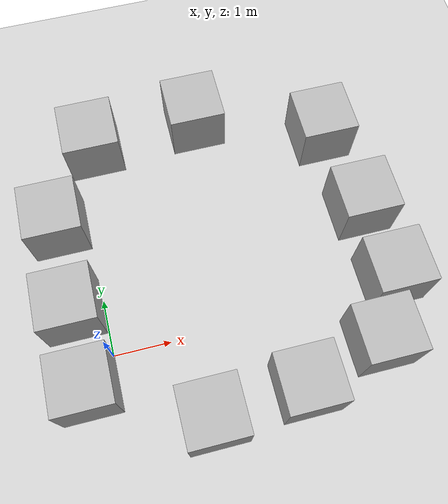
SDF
<sdf version='1.9'>
  <world name='empty'>
    <physics name='1ms' type='ignored'>
      <max_step_size>0.001</max_step_size>
      <real_time_factor>1</real_time_factor>
      <real_time_update_rate>1000</real_time_update_rate>
    </physics>
    <plugin name='gz::sim::systems::Physics' filename='ignition-gazebo-physics-system'/>
    <plugin name='gz::sim::systems::UserCommands' filename='ignition-gazebo-user-commands-system'/>
    <plugin name='gz::sim::systems::SceneBroadcaster' filename='ignition-gazebo-scene-broadcaster-system'/>
    <plugin name='gz::sim::systems::Contact' filename='ignition-gazebo-contact-system'/>
    <gravity>0 0 -9.8</gravity>
    <magnetic_field>6e-06 2.3e-05 -4.2e-05</magnetic_field>
    <atmosphere type='adiabatic'/>
    <scene>
      <ambient>0.4 0.4 0.4 1</ambient>
      <background>0.7 0.7 0.7 1</background>
      <shadows>true</shadows>
    </scene>
    <model name='ground_plane'>
      <static>true</static>
      <link name='link'>
        <collision name='collision'>
          <geometry>
            <plane>
              <normal>0 0 1</normal>
              <size>100 100</size>
            </plane>
          </geometry>
          <surface>
            <friction>
              <ode/>
            </friction>
            <bounce/>
            <contact/>
          </surface>
        </collision>
        <visual name='visual'>
          <geometry>
            <plane>
              <normal>0 0 1</normal>
              <size>100 100</size>
            </plane>
          </geometry>
          <material>
            <ambient>0.8 0.8 0.8 1</ambient>
            <diffuse>0.8 0.8 0.8 1</diffuse>
            <specular>0.8 0.8 0.8 1</specular>
          </material>
        </visual>
        <pose>0 0 0 0 -0 0</pose>
        <inertial>
          <pose>0 0 0 0 -0 0</pose>
          <mass>1</mass>
          <inertia>
            <ixx>1</ixx>
            <ixy>0</ixy>
            <ixz>0</ixz>
            <iyy>1</iyy>
            <iyz>0</iyz>
            <izz>1</izz>
          </inertia>
        </inertial>
        <enable_wind>false</enable_wind>
      </link>
      <pose>0 0 0 0 -0 0</pose>
      <self_collide>false</self_collide>
    </model>
    <model name='box'>
      <pose>-0.523875 2.54638 0.5 0 -0 0</pose>
      <link name='box_link'>
        <inertial>
          <inertia>
            <ixx>0.16666</ixx>
            <ixy>0</ixy>
            <ixz>0</ixz>
            <iyy>0.16666</iyy>
            <iyz>0</iyz>
            <izz>0.16666</izz>
          </inertia>
          <mass>1</mass>
          <pose>0 0 0 0 -0 0</pose>
        </inertial>
        <collision name='box_collision'>
          <geometry>
            <box>
              <size>1 1 1</size>
            </box>
          </geometry>
          <surface>
            <friction>
              <ode/>
            </friction>
            <bounce/>
            <contact/>
          </surface>
        </collision>
        <visual name='box_visual'>
          <geometry>
            <box>
              <size>1 1 1</size>
            </box>
          </geometry>
          <material>
            <ambient>0.3 0.3 0.3 1</ambient>
            <diffuse>0.7 0.7 0.7 1</diffuse>
            <specular>1 1 1 1</specular>
          </material>
        </visual>
        <pose>0 0 0 0 -0 0</pose>
        <enable_wind>false</enable_wind>
      </link>
      <static>false</static>
      <self_collide>false</self_collide>
    </model>
    <model name='box_0'>
      <pose>2.36677 4.13971 0.5 0 -0 0</pose>
      <link name='box_link'>
        <inertial>
          <inertia>
            <ixx>0.16666</ixx>
            <ixy>0</ixy>
            <ixz>0</ixz>
            <iyy>0.16666</iyy>
            <iyz>0</iyz>
            <izz>0.16666</izz>
          </inertia>
          <mass>1</mass>
          <pose>0 0 0 0 -0 0</pose>
        </inertial>
        <collision name='box_collision'>
          <geometry>
            <box>
              <size>1 1 1</size>
            </box>
          </geometry>
          <surface>
            <friction>
              <ode/>
            </friction>
            <bounce/>
            <contact/>
          </surface>
        </collision>
        <visual name='box_visual'>
          <geometry>
            <box>
              <size>1 1 1</size>
            </box>
          </geometry>
          <material>
            <ambient>0.3 0.3 0.3 1</ambient>
            <diffuse>0.7 0.7 0.7 1</diffuse>
            <specular>1 1 1 1</specular>
          </material>
        </visual>
        <pose>0 0 0 0 -0 0</pose>
        <enable_wind>false</enable_wind>
      </link>
      <static>false</static>
      <self_collide>false</self_collide>
    </model>
    <model name='box_1'>
      <pose>4.88511 1.60801 0.5 0 -0 0</pose>
      <link name='box_link'>
        <inertial>
          <inertia>
            <ixx>0.16666</ixx>
            <ixy>0</ixy>
            <ixz>0</ixz>
            <iyy>0.16666</iyy>
            <iyz>0</iyz>
            <izz>0.16666</izz>
          </inertia>
          <mass>1</mass>
          <pose>0 0 0 0 -0 0</pose>
        </inertial>
        <collision name='box_collision'>
          <geometry>
            <box>
              <size>1 1 1</size>
            </box>
          </geometry>
          <surface>
            <friction>
              <ode/>
            </friction>
            <bounce/>
            <contact/>
          </surface>
        </collision>
        <visual name='box_visual'>
          <geometry>
            <box>
              <size>1 1 1</size>
            </box>
          </geometry>
          <material>
            <ambient>0.3 0.3 0.3 1</ambient>
            <diffuse>0.7 0.7 0.7 1</diffuse>
            <specular>1 1 1 1</specular>
          </material>
        </visual>
        <pose>0 0 0 0 -0 0</pose>
        <enable_wind>false</enable_wind>
      </link>
      <static>false</static>
      <self_collide>false</self_collide>
    </model>
    <model name='box_2'>
      <pose>4.64743 3.28891 0.5 0 -0 0</pose>
      <link name='box_link'>
        <inertial>
          <inertia>
            <ixx>0.16666</ixx>
            <ixy>0</ixy>
            <ixz>0</ixz>
            <iyy>0.16666</iyy>
            <iyz>0</iyz>
            <izz>0.16666</izz>
          </inertia>
          <mass>1</mass>
          <pose>0 0 0 0 -0 0</pose>
        </inertial>
        <collision name='box_collision'>
          <geometry>
            <box>
              <size>1 1 1</size>
            </box>
          </geometry>
          <surface>
            <friction>
              <ode/>
            </friction>
            <bounce/>
            <contact/>
          </surface>
        </collision>
        <visual name='box_visual'>
          <geometry>
            <box>
              <size>1 1 1</size>
            </box>
          </geometry>
          <material>
            <ambient>0.3 0.3 0.3 1</ambient>
            <diffuse>0.7 0.7 0.7 1</diffuse>
            <specular>1 1 1 1</specular>
          </material>
        </visual>
        <pose>0 0 0 0 -0 0</pose>
        <enable_wind>false</enable_wind>
      </link>
      <static>false</static>
      <self_collide>false</self_collide>
    </model>
    <model name='box_3'>
      <pose>0.377373 4.02456 0.5 0 -0 0</pose>
      <link name='box_link'>
        <inertial>
          <inertia>
            <ixx>0.16666</ixx>
            <ixy>0</ixy>
            <ixz>0</ixz>
            <iyy>0.16666</iyy>
            <iyz>0</iyz>
            <izz>0.16666</izz>
          </inertia>
          <mass>1</mass>
          <pose>0 0 0 0 -0 0</pose>
        </inertial>
        <collision name='box_collision'>
          <geometry>
            <box>
              <size>1 1 1</size>
            </box>
          </geometry>
          <surface>
            <friction>
              <ode/>
            </friction>
            <bounce/>
            <contact/>
          </surface>
        </collision>
        <visual name='box_visual'>
          <geometry>
            <box>
              <size>1 1 1</size>
            </box>
          </geometry>
          <material>
            <ambient>0.3 0.3 0.3 1</ambient>
            <diffuse>0.7 0.7 0.7 1</diffuse>
            <specular>1 1 1 1</specular>
          </material>
        </visual>
        <pose>0 0 0 0 -0 0</pose>
        <enable_wind>false</enable_wind>
      </link>
      <static>false</static>
      <self_collide>false</self_collide>
    </model>
    <model name='box_4'>
      <pose>-0.523875 0.921339 0.5 0 -0 0</pose>
      <link name='box_link'>
        <inertial>
          <inertia>
            <ixx>0.16666</ixx>
            <ixy>0</ixy>
            <ixz>0</ixz>
            <iyy>0.16666</iyy>
            <iyz>0</iyz>
            <izz>0.16666</izz>
          </inertia>
          <mass>1</mass>
          <pose>0 0 0 0 -0 0</pose>
        </inertial>
        <collision name='box_collision'>
          <geometry>
            <box>
              <size>1 1 1</size>
            </box>
          </geometry>
          <surface>
            <friction>
              <ode/>
            </friction>
            <bounce/>
            <contact/>
          </surface>
        </collision>
        <visual name='box_visual'>
          <geometry>
            <box>
              <size>1 1 1</size>
            </box>
          </geometry>
          <material>
            <ambient>0.3 0.3 0.3 1</ambient>
            <diffuse>0.7 0.7 0.7 1</diffuse>
            <specular>1 1 1 1</specular>
          </material>
        </visual>
        <pose>0 0 0 0 -0 0</pose>
        <enable_wind>false</enable_wind>
      </link>
      <static>false</static>
      <self_collide>false</self_collide>
    </model>
    <model name='box_5'>
      <pose>-0.486726 -0.458975 0.5 0 -0 0</pose>
      <link name='box_link'>
        <inertial>
          <inertia>
            <ixx>0.16666</ixx>
            <ixy>0</ixy>
            <ixz>0</ixz>
            <iyy>0.16666</iyy>
            <iyz>0</iyz>
            <izz>0.16666</izz>
          </inertia>
          <mass>1</mass>
          <pose>0 0 0 0 -0 0</pose>
        </inertial>
        <collision name='box_collision'>
          <geometry>
            <box>
              <size>1 1 1</size>
            </box>
          </geometry>
          <surface>
            <friction>
              <ode/>
            </friction>
            <bounce/>
            <contact/>
          </surface>
        </collision>
        <visual name='box_visual'>
          <geometry>
            <box>
              <size>1 1 1</size>
            </box>
          </geometry>
          <material>
            <ambient>0.3 0.3 0.3 1</ambient>
            <diffuse>0.7 0.7 0.7 1</diffuse>
            <specular>1 1 1 1</specular>
          </material>
        </visual>
        <pose>0 0 0 0 -0 0</pose>
        <enable_wind>false</enable_wind>
      </link>
      <static>false</static>
      <self_collide>false</self_collide>
    </model>
    <model name='box_6'>
      <pose>1.40201 -1.40721 0.5 0 -0 0</pose>
      <link name='box_link'>
        <inertial>
          <inertia>
            <ixx>0.16666</ixx>
            <ixy>0</ixy>
            <ixz>0</ixz>
            <iyy>0.16666</iyy>
            <iyz>0</iyz>
            <izz>0.16666</izz>
          </inertia>
          <mass>1</mass>
          <pose>0 0 0 0 -0 0</pose>
        </inertial>
        <collision name='box_collision'>
          <geometry>
            <box>
              <size>1 1 1</size>
            </box>
          </geometry>
          <surface>
            <friction>
              <ode/>
            </friction>
            <bounce/>
            <contact/>
          </surface>
        </collision>
        <visual name='box_visual'>
          <geometry>
            <box>
              <size>1 1 1</size>
            </box>
          </geometry>
          <material>
            <ambient>0.3 0.3 0.3 1</ambient>
            <diffuse>0.7 0.7 0.7 1</diffuse>
            <specular>1 1 1 1</specular>
          </material>
        </visual>
        <pose>0 0 0 0 -0 0</pose>
        <enable_wind>false</enable_wind>
      </link>
      <static>false</static>
      <self_collide>false</self_collide>
    </model>
    <model name='box_7'>
      <pose>2.98973 -1.29104 0.5 0 -0 0</pose>
      <link name='box_link'>
        <inertial>
          <inertia>
            <ixx>0.16666</ixx>
            <ixy>0</ixy>
            <ixz>0</ixz>
            <iyy>0.16666</iyy>
            <iyz>0</iyz>
            <izz>0.16666</izz>
          </inertia>
          <mass>1</mass>
          <pose>0 0 0 0 -0 0</pose>
        </inertial>
        <collision name='box_collision'>
          <geometry>
            <box>
              <size>1 1 1</size>
            </box>
          </geometry>
          <surface>
            <friction>
              <ode/>
            </friction>
            <bounce/>
            <contact/>
          </surface>
        </collision>
        <visual name='box_visual'>
          <geometry>
            <box>
              <size>1 1 1</size>
            </box>
          </geometry>
          <material>
            <ambient>0.3 0.3 0.3 1</ambient>
            <diffuse>0.7 0.7 0.7 1</diffuse>
            <specular>1 1 1 1</specular>
          </material>
        </visual>
        <pose>0 0 0 0 -0 0</pose>
        <enable_wind>false</enable_wind>
      </link>
      <static>false</static>
      <self_collide>false</self_collide>
    </model>
    <model name='box_8'>
      <pose>4.41547 -0.85112 0.5 0 -0 0</pose>
      <link name='box_link'>
        <inertial>
          <inertia>
            <ixx>0.16666</ixx>
            <ixy>0</ixy>
            <ixz>0</ixz>
            <iyy>0.16666</iyy>
            <iyz>0</iyz>
            <izz>0.16666</izz>
          </inertia>
          <mass>1</mass>
          <pose>0 0 0 0 -0 0</pose>
        </inertial>
        <collision name='box_collision'>
          <geometry>
            <box>
              <size>1 1 1</size>
            </box>
          </geometry>
          <surface>
            <friction>
              <ode/>
            </friction>
            <bounce/>
            <contact/>
          </surface>
        </collision>
        <visual name='box_visual'>
          <geometry>
            <box>
              <size>1 1 1</size>
            </box>
          </geometry>
          <material>
            <ambient>0.3 0.3 0.3 1</ambient>
            <diffuse>0.7 0.7 0.7 1</diffuse>
            <specular>1 1 1 1</specular>
          </material>
        </visual>
        <pose>0 0 0 0 -0 0</pose>
        <enable_wind>false</enable_wind>
      </link>
      <static>false</static>
      <self_collide>false</self_collide>
    </model>
    <model name='box_9'>
      <pose>4.98418 0.200923 0.5 0 -0 0</pose>
      <link name='box_link'>
        <inertial>
          <inertia>
            <ixx>0.16666</ixx>
            <ixy>0</ixy>
            <ixz>0</ixz>
            <iyy>0.16666</iyy>
            <iyz>0</iyz>
            <izz>0.16666</izz>
          </inertia>
          <mass>1</mass>
          <pose>0 0 0 0 -0 0</pose>
        </inertial>
        <collision name='box_collision'>
          <geometry>
            <box>
              <size>1 1 1</size>
            </box>
          </geometry>
          <surface>
            <friction>
              <ode/>
            </friction>
            <bounce/>
            <contact/>
          </surface>
        </collision>
        <visual name='box_visual'>
          <geometry>
            <box>
              <size>1 1 1</size>
            </box>
          </geometry>
          <material>
            <ambient>0.3 0.3 0.3 1</ambient>
            <diffuse>0.7 0.7 0.7 1</diffuse>
            <specular>1 1 1 1</specular>
          </material>
        </visual>
        <pose>0 0 0 0 -0 0</pose>
        <enable_wind>false</enable_wind>
      </link>
      <static>false</static>
      <self_collide>false</self_collide>
    </model>
    <light name='sun' type='directional'>
      <pose>0 0 10 0 -0 0</pose>
      <cast_shadows>true</cast_shadows>
      <intensity>1</intensity>
      <direction>-0.5 0.1 -0.9</direction>
      <diffuse>0.8 0.8 0.8 1</diffuse>
      <specular>0.2 0.2 0.2 1</specular>
      <attenuation>
        <range>1000</range>
        <linear>0.01</linear>
        <constant>0.90000000000000002</constant>
        <quadratic>0.001</quadratic>
      </attenuation>
      <spot>
        <inner_angle>0</inner_angle>
        <outer_angle>0</outer_angle>
        <falloff>0</falloff>
      </spot>
    </light>
  </world>
</sdf>
